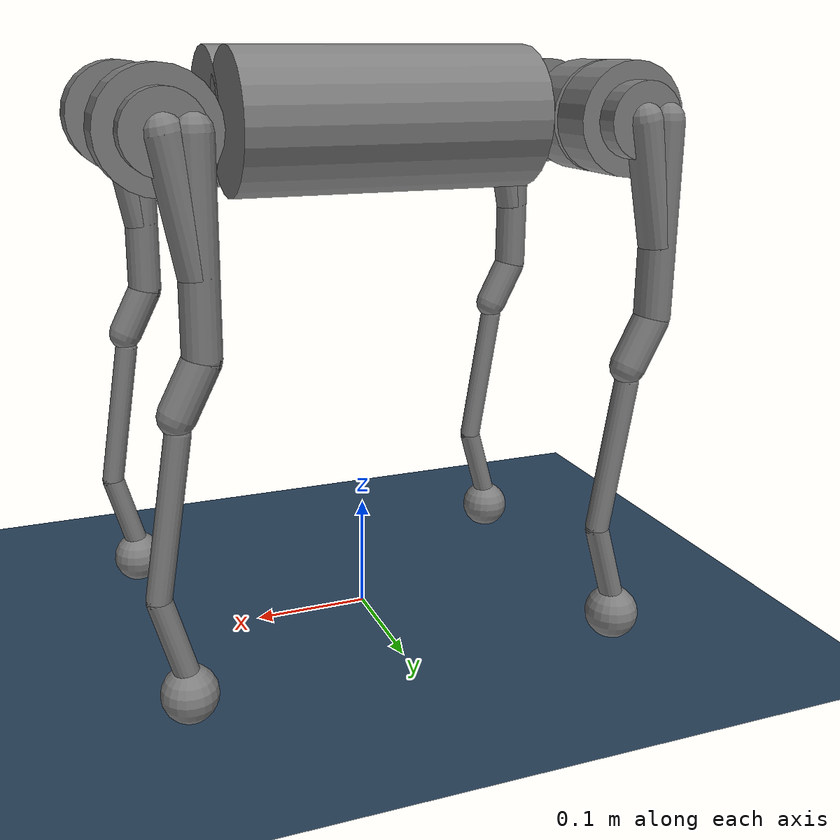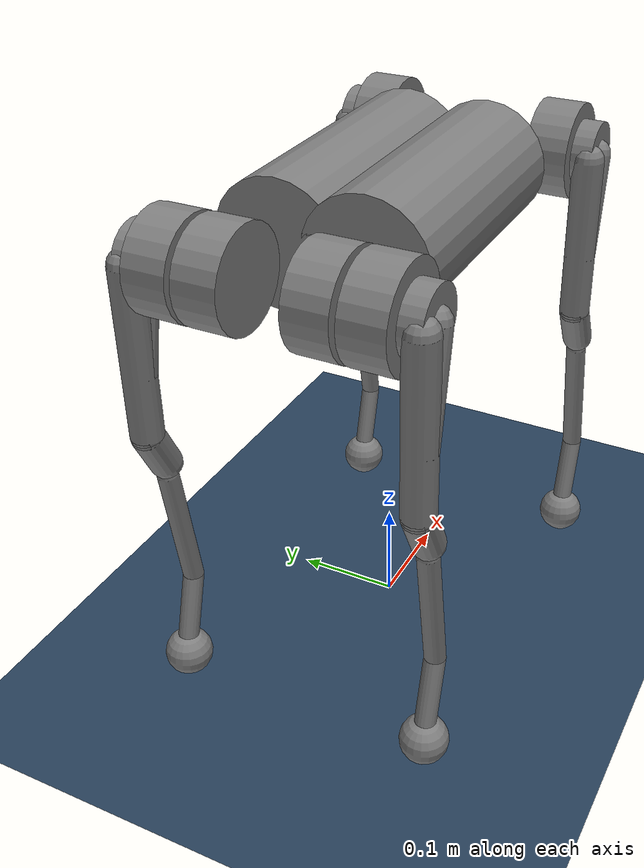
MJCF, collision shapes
<mujoco model="empty arena">
  <compiler angle="radian"/>

  <option timestep="0.004" integrator="implicitfast" iterations="5" ls_iterations="8">
    <flag eulerdamp="disable"/>
  </option>

  <size nkey="1"/>

  <visual>
    <global azimuth="135" elevation="-25" offwidth="1920" offheight="1080"/>
    <quality shadowsize="8192"/>
    <headlight ambient="0.3 0.3 0.3" diffuse="0.6 0.6 0.6" specular="0 0 0"/>
    <scale forcewidth="0.25" contactwidth="0.4" contactheight="0.15"/>
    <rgba haze="0.15 0.25 0.35 1" force="1 0 0 1"/>
  </visual>

  <statistic meansize="0.03"/>

  <default>

    <default>
      <default class="go1">
        <geom contype="0" conaffinity="0" condim="1"/>
        <general biastype="affine" biasprm="0 -1"/>
        <default class="abduction">
          <joint range="-0.863 0.863"/>
        </default>
        <default class="hip">
          <joint range="-0.686 4.501"/>
        </default>
        <default class="knee">
          <joint range="-2.818 -0.888"/>
        </default>
        <default class="visual">
          <geom type="mesh" group="2" material="dark"/>
        </default>
        <default class="collision">
          <geom type="capsule" group="3"/>
          <default class="hip_left1">
            <geom size="0.046 0.02 0" type="cylinder"/>
          </default>
          <default class="hip_left2">
            <geom size="0.031 0.02 0" type="cylinder"/>
          </default>
          <default class="hip_left3">
            <geom size="0.046 0.02 0" type="cylinder"/>
          </default>
          <default class="hip_right1">
            <geom size="0.046 0.02 0" type="cylinder"/>
          </default>
          <default class="hip_right2">
            <geom size="0.031 0.02 0" type="cylinder"/>
          </default>
          <default class="hip_right3">
            <geom size="0.046 0.02 0" type="cylinder"/>
          </default>
          <default class="thigh1">
            <geom size="0.015 0 0"/>
          </default>
          <default class="thigh2">
            <geom size="0.015 0 0"/>
          </default>
          <default class="thigh3">
            <geom size="0.015 0 0"/>
          </default>
          <default class="calf1">
            <geom size="0.01 0 0"/>
          </default>
          <default class="calf2">
            <geom size="0.01 0 0"/>
          </default>
          <default class="foot">
            <geom size="0.023 0 0" type="sphere"/>
          </default>
        </default>
      </default>
    </default>
  </default>

  <custom>
    <numeric name="max_contact_points" size="1" data="30"/>
    <numeric name="max_geom_pairs" size="1" data="12"/>
  </custom>

  <asset>
    <texture type="2d" colorspace="auto" name="groundplane" builtin="checker" mark="edge" rgb1="0.2 0.3 0.4" rgb2="0.1 0.2 0.3" markrgb="0.8 0.8 0.8" width="300" height="300"/>
    <texture type="skybox" colorspace="auto" builtin="gradient" rgb1="0.3 0.5 0.7" rgb2="0.1 0.2 0.3" width="512" height="3072"/>
    <material name="groundplane" texture="groundplane" texuniform="true" texrepeat="4 4" reflectance="0.2"/>
    <material name="dark" rgba="0.2 0.2 0.2 1"/>
    <mesh name="trunk" class="go1" content_type="model/stl" file="trunk.stl"/>
    <mesh name="hip" class="go1" content_type="model/stl" file="hip.stl"/>
    <mesh name="thigh_mirror" class="go1" content_type="model/stl" file="thigh_mirror.stl"/>
    <mesh name="calf" class="go1" content_type="model/stl" file="calf.stl"/>
    <mesh name="thigh" class="go1" content_type="model/stl" file="thigh.stl"/>
  </asset>

  <worldbody>
    <geom name="floor" size="0 0 0.01" type="plane" conaffinity="0" priority="1" friction="0.6" material="groundplane"/>
    <light pos="0 0 1.5" dir="0 0 -1" type="directional"/>
    <body name="trunk" childclass="go1" pos="0 0 0.445">
      <inertial pos="0.0223 0.002 -0.0005" quat="-0.00342088 0.705204 0.000106698 0.708996" mass="5.204" diaginertia="0.0716565 0.0630105 0.0168101"/>
      <joint type="free" limited="false" actuatorfrclimited="false"/>
      <geom class="visual" mesh="trunk"/>
      <geom name="trunk_collision1" class="collision" size="0.058 0.125" pos="0 -0.04 0" quat="0.707107 0 0.707107 0" type="cylinder" conaffinity="1"/>
      <geom name="trunk_collision2" class="collision" size="0.058 0.125" pos="0 0.04 0" quat="0.707107 0 0.707107 0" type="cylinder" conaffinity="1"/>
      <site name="head" pos="0.3 0 0" size="0.02" group="5" rgba="1 0 0 1"/>
      <site name="imu" pos="-0.01592 -0.06659 -0.00617" group="5"/>
      <camera name="tracking" pos="0.846 -1.3 0.316" quat="0.791164 0.554139 0.148485 0.211997" mode="trackcom"/>
      <camera name="top" pos="-1 0 1" quat="0.653281 0.270598 -0.270598 -0.653281" mode="trackcom"/>
      <camera name="side" pos="0 -1 0.3" quat="0.850651 0.525731 0 0" mode="trackcom"/>
      <camera name="back" pos="-1 0 0.3" quat="0.601501 0.371748 -0.371748 -0.601501" mode="trackcom"/>
      <light pos="0 0 2" dir="0 0 -1" mode="trackcom"/>
      <body name="FR_hip" pos="0.1881 -0.04675 0">
        <inertial pos="-0.0049166 0.00762615 -8.865e-05" quat="0.507341 0.514169 0.495027 0.482891" mass="0.68" diaginertia="0.000734064 0.000468438 0.000398719"/>
        <joint name="FR_hip_joint" class="abduction" pos="0 0 0" axis="1 0 0" actuatorfrcrange="-23.7 23.7" armature="0.005"/>
        <geom class="visual" mesh="hip"/>
        <geom name="FR_hip_collision1" class="hip_right1" pos="0 -0.045 0" quat="0.707107 0.707107 0 0" conaffinity="1"/>
        <geom name="FR_hip_collision2" class="hip_right2" pos="0 -0.065 0" quat="0.707107 0.707107 0 0" conaffinity="1"/>
        <body name="FR_thigh" pos="0 -0.08 0">
          <inertial pos="-0.00304722 0.019315 -0.0305004" quat="0.65243 -0.0272313 0.0775126 0.753383" mass="1.009" diaginertia="0.00478717 0.00460903 0.000709268"/>
          <joint name="FR_thigh_joint" class="hip" pos="0 0 0" axis="0 1 0" actuatorfrcrange="-23.7 23.7" armature="0.005"/>
          <geom class="visual" mesh="thigh_mirror"/>
          <geom name="FR_thigh_collision1" class="thigh1" size="0.015 0.08" pos="-0.02 0 -0.08" conaffinity="1"/>
          <geom name="FR_thigh_collision2" class="thigh2" size="0.015 0.0509902" pos="-0.01 0 -0.05" quat="0.995133 0 0.0985376 0" conaffinity="1"/>
          <geom name="FR_thigh_collision3" class="thigh3" size="0.015 0.0223607" pos="-0.01 0 -0.18" quat="0.973249 0 -0.229753 0" conaffinity="1"/>
          <body name="FR_calf" pos="0 0 -0.213">
            <inertial pos="0.00429862 0.000976676 -0.146197" quat="0.691246 0.00357467 0.00511118 0.722592" mass="0.195862" diaginertia="0.00149767 0.00148468 3.58427e-05"/>
            <joint name="FR_calf_joint" class="knee" pos="0 0 0" axis="0 1 0" actuatorfrcrange="-35.55 35.55" armature="0.005"/>
            <geom class="visual" mesh="calf"/>
            <geom name="FR_calf_collision1" class="calf1" size="0.01 0.0657647" pos="0.01 0 -0.065" quat="0.997089 0 -0.0762506 0" conaffinity="1"/>
            <geom name="FR_calf_collision2" class="calf2" size="0.01 0.0364005" pos="0.01 0 -0.165" quat="0.990334 0 0.138701 0" conaffinity="1"/>
            <geom name="FR" class="foot" pos="0 0 -0.213" conaffinity="1"/>
            <site name="FR" pos="0 0 -0.213" size="0.023" group="5"/>
          </body>
        </body>
      </body>
      <body name="FL_hip" pos="0.1881 0.04675 0">
        <inertial pos="-0.0049166 -0.00762615 -8.865e-05" quat="0.482891 0.495027 0.514169 0.507341" mass="0.68" diaginertia="0.000734064 0.000468438 0.000398719"/>
        <joint name="FL_hip_joint" class="abduction" pos="0 0 0" axis="1 0 0" actuatorfrcrange="-23.7 23.7" armature="0.005"/>
        <geom class="visual" mesh="hip"/>
        <geom name="FL_hip_collision1" class="hip_left1" pos="0 0.045 0" quat="0.707107 0.707107 0 0" conaffinity="1"/>
        <geom name="FL_hip_collision2" class="hip_left2" pos="0 0.065 0" quat="0.707107 0.707107 0 0" conaffinity="1"/>
        <body name="FL_thigh" pos="0 0.08 0">
          <inertial pos="-0.00304722 -0.019315 -0.0305004" quat="0.753383 0.0775126 -0.0272313 0.65243" mass="1.009" diaginertia="0.00478717 0.00460903 0.000709268"/>
          <joint name="FL_thigh_joint" class="hip" pos="0 0 0" axis="0 1 0" actuatorfrcrange="-23.7 23.7" armature="0.005"/>
          <geom class="visual" mesh="thigh"/>
          <geom name="FL_thigh_collision1" class="thigh1" size="0.015 0.08" pos="-0.02 0 -0.08" conaffinity="1"/>
          <geom name="FL_thigh_collision2" class="thigh2" size="0.015 0.0509902" pos="-0.01 0 -0.05" quat="0.995133 0 0.0985376 0" conaffinity="1"/>
          <geom name="FL_thigh_collision3" class="thigh3" size="0.015 0.0223607" pos="-0.01 0 -0.18" quat="0.973249 0 -0.229753 0" conaffinity="1"/>
          <body name="FL_calf" pos="0 0 -0.213">
            <inertial pos="0.00429862 0.000976676 -0.146197" quat="0.691246 0.00357467 0.00511118 0.722592" mass="0.195862" diaginertia="0.00149767 0.00148468 3.58427e-05"/>
            <joint name="FL_calf_joint" class="knee" pos="0 0 0" axis="0 1 0" actuatorfrcrange="-35.55 35.55" armature="0.005"/>
            <geom class="visual" mesh="calf"/>
            <geom name="FL_calf_collision1" class="calf1" size="0.01 0.0657647" pos="0.01 0 -0.065" quat="0.997089 0 -0.0762506 0" conaffinity="1"/>
            <geom name="FL_calf_collision2" class="calf2" size="0.01 0.0364005" pos="0.01 0 -0.165" quat="0.990334 0 0.138701 0" conaffinity="1"/>
            <geom name="FL" class="foot" pos="0 0 -0.213" conaffinity="1"/>
            <site name="FL" pos="0 0 -0.213" size="0.023" group="5"/>
          </body>
        </body>
      </body>
      <body name="RR_hip" pos="-0.1881 -0.04675 0">
        <inertial pos="0.0049166 0.00762615 -8.865e-05" quat="0.495027 0.482891 0.507341 0.514169" mass="0.68" diaginertia="0.000734064 0.000468438 0.000398719"/>
        <joint name="RR_hip_joint" class="abduction" pos="0 0 0" axis="1 0 0" actuatorfrcrange="-23.7 23.7" armature="0.005"/>
        <geom class="visual" quat="0 0 0 -1" mesh="hip"/>
        <geom name="RR_hip_collision1" class="hip_right1" pos="0 -0.045 0" quat="0.707107 0.707107 0 0" conaffinity="1"/>
        <geom name="RR_hip_collision2" class="hip_right2" pos="0 -0.065 0" quat="0.707107 0.707107 0 0" conaffinity="1"/>
        <geom name="RR_hip_collision3" class="hip_right3" quat="0.707107 0.707107 0 0" conaffinity="1"/>
        <body name="RR_thigh" pos="0 -0.08 0">
          <inertial pos="-0.00304722 0.019315 -0.0305004" quat="0.65243 -0.0272313 0.0775126 0.753383" mass="1.009" diaginertia="0.00478717 0.00460903 0.000709268"/>
          <joint name="RR_thigh_joint" class="hip" pos="0 0 0" axis="0 1 0" actuatorfrcrange="-23.7 23.7" armature="0.005"/>
          <geom class="visual" mesh="thigh_mirror"/>
          <geom name="RR_thigh_collision1" class="thigh1" size="0.015 0.08" pos="-0.02 0 -0.08" conaffinity="1"/>
          <geom name="RR_thigh_collision2" class="thigh2" size="0.015 0.0509902" pos="-0.01 0 -0.05" quat="0.995133 0 0.0985376 0" conaffinity="1"/>
          <geom name="RR_thigh_collision3" class="thigh3" size="0.015 0.0223607" pos="-0.01 0 -0.18" quat="0.973249 0 -0.229753 0" conaffinity="1"/>
          <body name="RR_calf" pos="0 0 -0.213">
            <inertial pos="0.00429862 0.000976676 -0.146197" quat="0.691246 0.00357467 0.00511118 0.722592" mass="0.195862" diaginertia="0.00149767 0.00148468 3.58427e-05"/>
            <joint name="RR_calf_joint" class="knee" pos="0 0 0" axis="0 1 0" actuatorfrcrange="-35.55 35.55" armature="0.005"/>
            <geom class="visual" mesh="calf"/>
            <geom name="RR_calf_collision1" class="calf1" size="0.01 0.0657647" pos="0.01 0 -0.065" quat="0.997089 0 -0.0762506 0" conaffinity="1"/>
            <geom name="RR_calf_collision2" class="calf2" size="0.01 0.0364005" pos="0.01 0 -0.165" quat="0.990334 0 0.138701 0" conaffinity="1"/>
            <geom name="RR" class="foot" pos="0 0 -0.213" conaffinity="1"/>
            <site name="RR" pos="0 0 -0.213" size="0.023" group="5"/>
          </body>
        </body>
      </body>
      <body name="RL_hip" pos="-0.1881 0.04675 0">
        <inertial pos="0.0049166 -0.00762615 -8.865e-05" quat="0.514169 0.507341 0.482891 0.495027" mass="0.68" diaginertia="0.000734064 0.000468438 0.000398719"/>
        <joint name="RL_hip_joint" class="abduction" pos="0 0 0" axis="1 0 0" actuatorfrcrange="-23.7 23.7" armature="0.005"/>
        <geom class="visual" quat="0 0 1 0" mesh="hip"/>
        <geom name="RL_hip_collision1" class="hip_left1" pos="0 0.045 0" quat="0.707107 0.707107 0 0" conaffinity="1"/>
        <geom name="RL_hip_collision2" class="hip_left2" pos="0 0.065 0" quat="0.707107 0.707107 0 0" conaffinity="1"/>
        <geom name="RL_hip_collision3" class="hip_left3" quat="0.707107 0.707107 0 0" conaffinity="1"/>
        <body name="RL_thigh" pos="0 0.08 0">
          <inertial pos="-0.00304722 -0.019315 -0.0305004" quat="0.753383 0.0775126 -0.0272313 0.65243" mass="1.009" diaginertia="0.00478717 0.00460903 0.000709268"/>
          <joint name="RL_thigh_joint" class="hip" pos="0 0 0" axis="0 1 0" actuatorfrcrange="-23.7 23.7" armature="0.005"/>
          <geom class="visual" mesh="thigh"/>
          <geom name="RL_thigh_collision1" class="thigh1" size="0.015 0.08" pos="-0.02 0 -0.08" conaffinity="1"/>
          <geom name="RL_thigh_collision2" class="thigh2" size="0.015 0.0509902" pos="-0.01 0 -0.05" quat="0.995133 0 0.0985376 0" conaffinity="1"/>
          <geom name="RL_thigh_collision3" class="thigh3" size="0.015 0.0223607" pos="-0.01 0 -0.18" quat="0.973249 0 -0.229753 0" conaffinity="1"/>
          <body name="RL_calf" pos="0 0 -0.213">
            <inertial pos="0.00429862 0.000976676 -0.146197" quat="0.691246 0.00357467 0.00511118 0.722592" mass="0.195862" diaginertia="0.00149767 0.00148468 3.58427e-05"/>
            <joint name="RL_calf_joint" class="knee" pos="0 0 0" axis="0 1 0" actuatorfrcrange="-35.55 35.55" armature="0.005"/>
            <geom class="visual" mesh="calf"/>
            <geom name="RL_calf_collision1" class="calf1" size="0.01 0.0657647" pos="0.01 0 -0.065" quat="0.997089 0 -0.0762506 0" conaffinity="1"/>
            <geom name="RL_calf_collision2" class="calf2" size="0.01 0.0364005" pos="0.01 0 -0.165" quat="0.990334 0 0.138701 0" conaffinity="1"/>
            <geom name="RL" class="foot" pos="0 0 -0.213" conaffinity="1"/>
            <site name="RL" pos="0 0 -0.213" size="0.023" group="5"/>
          </body>
        </body>
      </body>
    </body>
  </worldbody>

  <actuator>
    <general name="FR_hip_joint" joint="FR_hip_joint" ctrlrange="-0.863 0.863" biastype="affine" gainprm="35" biasprm="0 -35 -0.5"/>
    <general name="FR_thigh_joint" joint="FR_thigh_joint" ctrlrange="-0.686 4.501" biastype="affine" gainprm="35" biasprm="0 -35 -0.5"/>
    <general name="FR_calf_joint" joint="FR_calf_joint" ctrlrange="-2.818 -0.888" biastype="affine" gainprm="35" biasprm="0 -35 -0.5"/>
    <general name="FL_hip_joint" joint="FL_hip_joint" ctrlrange="-0.863 0.863" biastype="affine" gainprm="35" biasprm="0 -35 -0.5"/>
    <general name="FL_thigh_joint" joint="FL_thigh_joint" ctrlrange="-0.686 4.501" biastype="affine" gainprm="35" biasprm="0 -35 -0.5"/>
    <general name="FL_calf_joint" joint="FL_calf_joint" ctrlrange="-2.818 -0.888" biastype="affine" gainprm="35" biasprm="0 -35 -0.5"/>
    <general name="RR_hip_joint" joint="RR_hip_joint" ctrlrange="-0.863 0.863" biastype="affine" gainprm="35" biasprm="0 -35 -0.5"/>
    <general name="RR_thigh_joint" joint="RR_thigh_joint" ctrlrange="-0.686 4.501" biastype="affine" gainprm="35" biasprm="0 -35 -0.5"/>
    <general name="RR_calf_joint" joint="RR_calf_joint" ctrlrange="-2.818 -0.888" biastype="affine" gainprm="35" biasprm="0 -35 -0.5"/>
    <general name="RL_hip_joint" joint="RL_hip_joint" ctrlrange="-0.863 0.863" biastype="affine" gainprm="35" biasprm="0 -35 -0.5"/>
    <general name="RL_thigh_joint" joint="RL_thigh_joint" ctrlrange="-0.686 4.501" biastype="affine" gainprm="35" biasprm="0 -35 -0.5"/>
    <general name="RL_calf_joint" joint="RL_calf_joint" ctrlrange="-2.818 -0.888" biastype="affine" gainprm="35" biasprm="0 -35 -0.5"/>
  </actuator>

  <sensor>
    <gyro site="imu" name="gyro"/>
    <velocimeter site="imu" name="local_linvel"/>
    <framezaxis objtype="site" objname="imu" name="upvector"/>
  </sensor>

  <keyframe>
    <key name="home" qpos="0 0 0.278 1 0 0 0 0.1 0.9 -1.8 -0.1 0.9 -1.8 0.1 0.9 -1.8 -0.1 0.9 -1.8" ctrl="0.1 0.9 -1.8 -0.1 0.9 -1.8 0.1 0.9 -1.8 -0.1 0.9 -1.8"/>
  </keyframe>
</mujoco>
